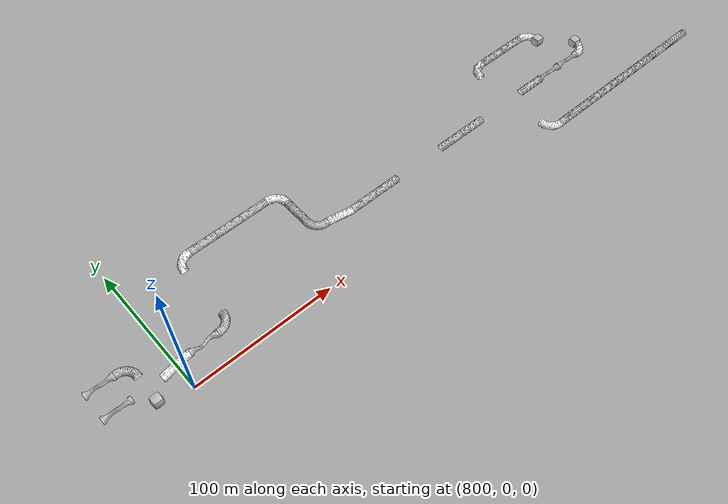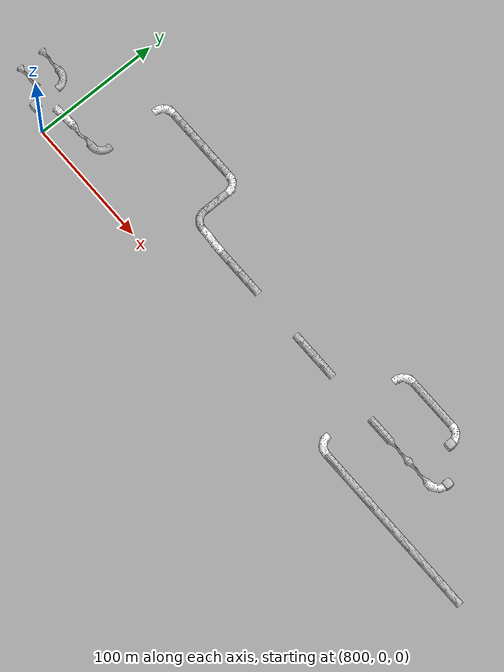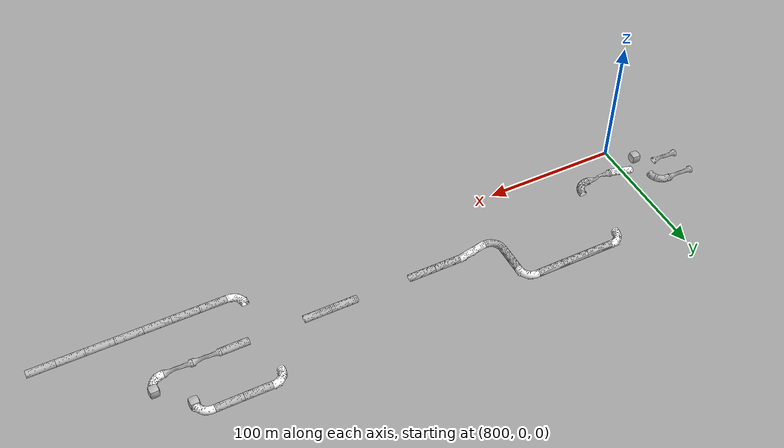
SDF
<sdf version="1.6">
 <world name="tunnel_circuit_practice_02">
  <include>
   <name>tile_1</name>
   <uri>model://Rough Tunnel Tile 90-degree Turn</uri>
   <pose>840.000000 80.000000 0.000000 0 0 0.000000</pose>
  </include>
  <include>
   <name>tile_2</name>
   <uri>model://tunnel_tile_5</uri>
   <pose>860.000000 80.000000 0.000000 0 0 -1.570796</pose>
  </include>
  <include>
   <name>tile_3</name>
   <uri>model://tunnel_tile_5</uri>
   <pose>880.000000 80.000000 0.000000 0 0 -1.570796</pose>
  </include>
  <include>
   <name>tile_4</name>
   <uri>model://tunnel_tile_5</uri>
   <pose>900.000000 80.000000 0.000000 0 0 -1.570796</pose>
  </include>
  <include>
   <name>tile_5</name>
   <uri>model://Rough Tunnel Tile 90-degree Turn</uri>
   <pose>920.000000 80.000000 0.000000 0 0 -1.570796</pose>
  </include>
  <include>
   <name>tile_6</name>
   <uri>model://Rough Tunnel Tile 90-degree Turn</uri>
   <pose>1100.000000 80.000000 -5.000000 0 0 0.000000</pose>
  </include>
  <include>
   <name>tile_7</name>
   <uri>model://tunnel_tile_5</uri>
   <pose>1120.000000 80.000000 -5.000000 0 0 1.570796</pose>
  </include>
  <include>
   <name>tile_8</name>
   <uri>model://tunnel_tile_5</uri>
   <pose>1140.000000 80.000000 -5.000000 0 0 1.570796</pose>
  </include>
  <include>
   <name>tile_9</name>
   <uri>model://Rough Tunnel Tile 90-degree Turn</uri>
   <pose>1160.000000 80.000000 -5.000000 0 0 -1.570796</pose>
  </include>
  <include>
   <name>tile_15</name>
   <uri>model://tunnel_tile_5</uri>
   <pose>920.000000 60.000000 0.000000 0 0 -3.141593</pose>
  </include>
  <include>
   <name>tile_43</name>
   <uri>model://constrained_tunnel_tile_tall</uri>
   <pose>760.000000 40.000000 -5.000000 0 0 -1.570796</pose>
  </include>
  <include>
   <name>tile_44</name>
   <uri>model://tunnel_tile_2</uri>
   <pose>780.000000 40.000000 -5.000000 0 0 -1.570796</pose>
  </include>
  <include>
   <name>tile_46</name>
   <uri>model://tunnel_tile_2</uri>
   <pose>920.000000 40.000000 0.000000 0 0 1.570796</pose>
  </include>
  <include>
   <name>tile_47</name>
   <uri>model://Rough Tunnel Tile Ramp</uri>
   <pose>940.000000 40.000000 -5.000000 0 0 1.570796</pose>
  </include>
  <include>
   <name>tile_48</name>
   <uri>model://tunnel_tile_5</uri>
   <pose>960.000000 40.000000 -5.000000 0 0 1.570796</pose>
  </include>
  <include>
   <name>tile_49</name>
   <uri>model://tunnel_tile_5</uri>
   <pose>980.000000 40.000000 -5.000000 0 0 1.570796</pose>
  </include>
  <include>
   <name>tile_52</name>
   <uri>model://tunnel_tile_5</uri>
   <pose>1040.000000 40.000000 -5.000000 0 0 -1.570796</pose>
  </include>
  <include>
   <name>tile_53</name>
   <uri>model://tunnel_tile_5</uri>
   <pose>1060.000000 40.000000 -5.000000 0 0 -1.570796</pose>
  </include>
  <include>
   <name>tile_56</name>
   <uri>model://tunnel_tile_5</uri>
   <pose>1120.000000 40.000000 -5.000000 0 0 1.570796</pose>
  </include>
  <include>
   <name>extinguisher_3</name>
   <uri>model://Extinguisher</uri>
   <pose>1127.930054 42.006500 -4.987750 0 0 1.570796</pose>
  </include>
  <include>
   <name>tile_57</name>
   <uri>model://constrained_tunnel_tile_tall</uri>
   <pose>1140.000000 40.000000 -5.000000 0 0 -1.570796</pose>
  </include>
  <include>
   <name>backpack_1</name>
   <uri>model://Backpack</uri>
   <pose>1147.239990 78.151001 -5.005480 0 0 -2.809980</pose>
  </include>
  <include>
   <name>tile_58</name>
   <uri>model://constrained_tunnel_tile_tall</uri>
   <pose>1160.000000 40.000000 -5.000000 0 0 -1.570796</pose>
  </include>
  <include>
   <name>tile_59</name>
   <uri>model://tunnel_tile_blocker</uri>
   <pose>1160.000000 70.000000 -5.000000 0 0 -3.141593</pose>
  </include>
  <include>
   <name>tile_60</name>
   <uri>model://Rough Tunnel Tile 90-degree Turn</uri>
   <pose>1180.000000 40.000000 -5.000000 0 0 -3.141593</pose>
  </include>
  <include>
   <name>tile_61</name>
   <uri>model://tunnel_tile_blocker</uri>
   <pose>1180.000000 50.000000 -5.000000 0 0 -3.141593</pose>
  </include>
  <include>
   <name>tile_107</name>
   <uri>model://constrained_tunnel_tile_tall</uri>
   <pose>760.000000 20.000000 -5.000000 0 0 1.570796</pose>
  </include>
  <include>
   <name>backpack_2</name>
   <uri>model://Backpack</uri>
   <pose>776.474976 35.905701 -4.947900 0 0 2.583087</pose>
  </include>
  <include>
   <name>tile_109</name>
   <uri>model://tunnel_tile_blocker</uri>
   <pose>780.000000 10.000000 -5.000000 0 0 1.570796</pose>
  </include>
  <include>
   <name>tile_110</name>
   <uri>model://Rough Tunnel Tile Ramp</uri>
   <pose>800.000000 20.000000 -5.000000 0 0 -1.570796</pose>
  </include>
  <include>
   <name>tile_111</name>
   <uri>model://constrained_tunnel_tile_short</uri>
   <pose>820.000000 20.000000 0.000000 0 0 -1.570796</pose>
  </include>
  <include>
   <name>tile_112</name>
   <uri>model://tunnel_tile_2</uri>
   <pose>840.000000 20.000000 0.000000 0 0 -3.141593</pose>
  </include>
  <include>
   <name>tile_156</name>
   <uri>model://Rough Tunnel Tile 90-degree Turn</uri>
   <pose>1100.000000 0.000000 -5.000000 0 0 1.570796</pose>
  </include>
  <include>
   <name>tile_157</name>
   <uri>model://tunnel_tile_5</uri>
   <pose>1120.000000 0.000000 -5.000000 0 0 1.570796</pose>
  </include>
  <include>
   <name>phone_2</name>
   <uri>model://Phone</uri>
   <pose>1120.699951 1.397430 -4.965550 -1.343904 0 1.570796</pose>
  </include>
  <include>
   <name>tile_158</name>
   <uri>model://tunnel_tile_5</uri>
   <pose>1140.000000 0.000000 -5.000000 0 0 1.570796</pose>
  </include>
  <include>
   <name>tile_159</name>
   <uri>model://tunnel_tile_5</uri>
   <pose>1160.000000 0.000000 -5.000000 0 0 1.570796</pose>
  </include>
  <include>
   <name>tile_160</name>
   <uri>model://tunnel_tile_5</uri>
   <pose>1180.000000 0.000000 -5.000000 0 0 1.570796</pose>
  </include>
  <include>
   <name>tile_161</name>
   <uri>model://tunnel_tile_5</uri>
   <pose>1200.000000 0.000000 -5.000000 0 0 1.570796</pose>
  </include>
  <include>
   <name>tile_162</name>
   <uri>model://tunnel_tile_5</uri>
   <pose>1220.000000 0.000000 -5.000000 0 0 1.570796</pose>
  </include>
  <include>
   <name>tile_163</name>
   <uri>model://tunnel_tile_5</uri>
   <pose>1240.000000 0.000000 -5.000000 0 0 1.570796</pose>
  </include>
 </world>
</sdf>
